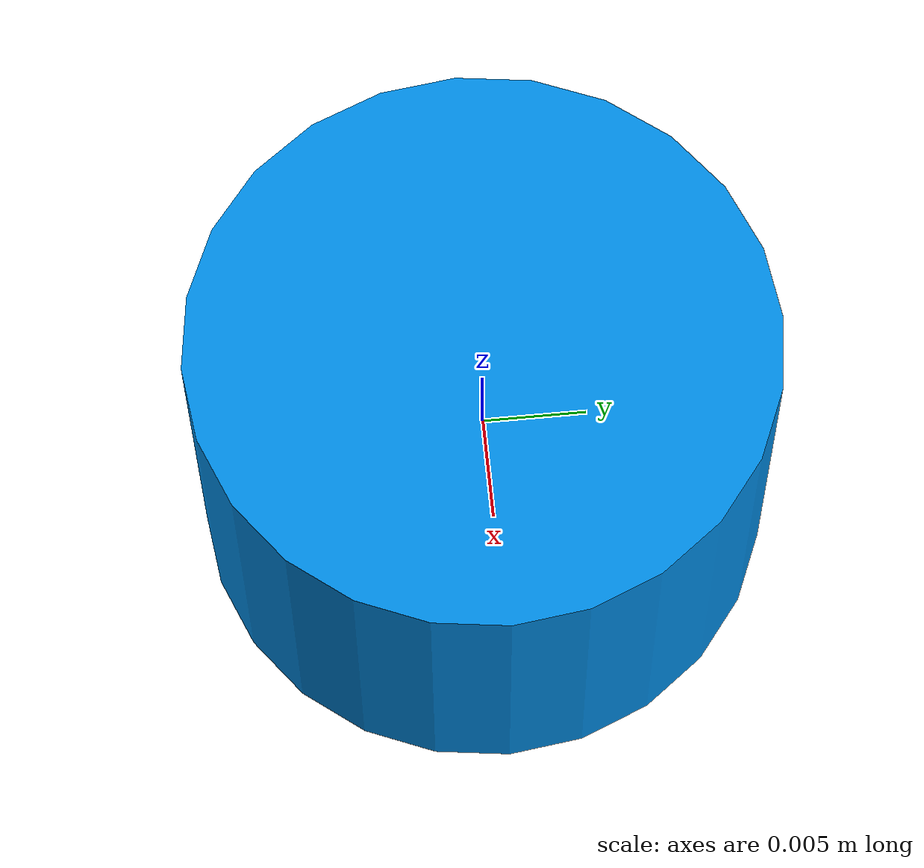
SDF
<?xml version="1.0"?>
<sdf version="1.9">
  <model name="m8_short_cylinder">
    <static>false</static>
    <link name="body">
      <inertial><mass>0.018</mass><inertia><ixx>0.000002</ixx><iyy>0.000002</iyy><izz>0.000002</izz></inertia></inertial>
      <visual name="visual"><geometry><cylinder><radius>0.014</radius><length>0.018</length></cylinder></geometry><material><ambient>0.0 0.55 0.9 1</ambient><diffuse>0.0 0.55 0.9 1</diffuse></material></visual>
      <collision name="collision"><geometry><cylinder><radius>0.014</radius><length>0.018</length></cylinder></geometry><surface><friction><ode><mu>1.5</mu><mu2>1.5</mu2></ode></friction><contact><ode><kp>1000000.0</kp><kd>10.0</kd></ode></contact></surface></collision>
    </link>
  </model>
</sdf>
